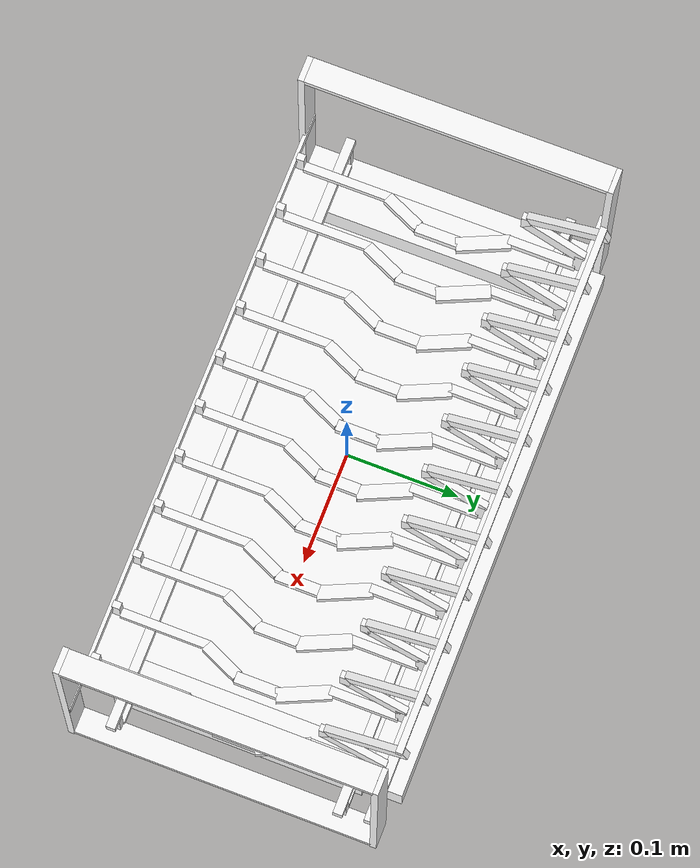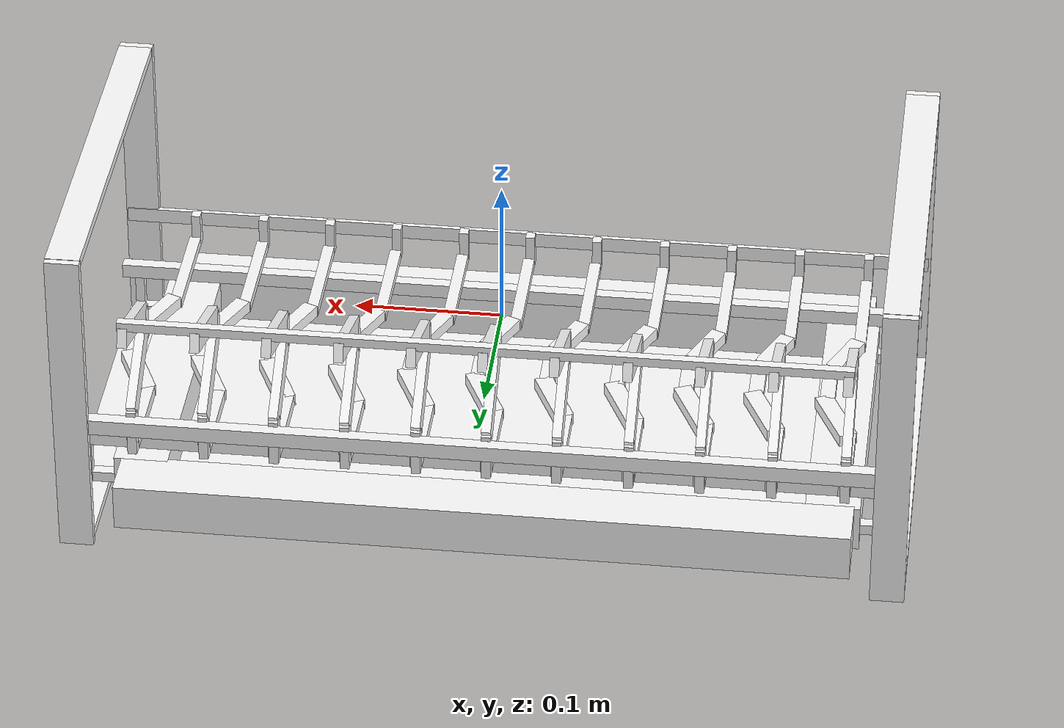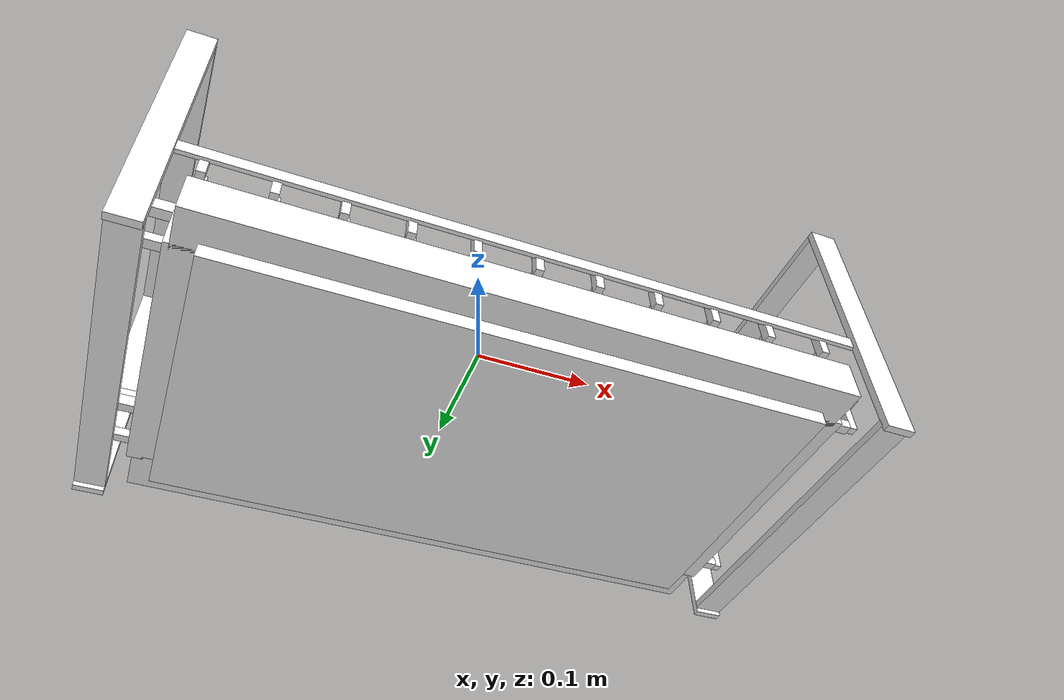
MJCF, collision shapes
<?xml version='1.0' encoding='utf-8'?>
<mujoco model="model">
  <option timestep="0.002" gravity="0.0 0.0 -9.81" />
  <compiler angle="radian" />
  <asset>
    <mesh file="visual/DishRack039.obj" name="DishRack039_vis" />
    <texture file="visual/T_BC001.png" name="DishRack039_material" type="2d" />
    <material name="DishRack039_material" rgba="1 1 1 1.0" texture="DishRack039_material" shininess="0.4472135901451111" specular="0.3103448502657381" />
  </asset>
  <default>
    <default class="visual">
      <geom conaffinity="0" contype="0" group="1" type="mesh" />
    </default>
    <default class="collision">
      <geom group="0" rgba="1 1 1 0.25" density="1.0" solref="0.004 1" solimp="0.998 0.998 0.001" />
    </default>
    <default class="spawn">
      <geom group="0" rgba="1 1 1 0.5" contype="0" conaffinity="0" />
      <site group="0" rgba="1 1 1 0.5" />
    </default>
    <default class="region">
      <geom group="1" conaffinity="0" contype="0" rgba="0 1 0 0" mass="0" />
    </default>
  </default>
  <worldbody>
    <body>
      <body name="object">
        <geom mesh="DishRack039_vis" type="mesh" solimp="0.998 0.998 0.001" solref="0.001 1" friction="0.95 0.3 0.1" class="visual" material="DishRack039_material" />
        <geom type="box" pos="-0.27304935 0.13317457 -0.00337540" size="0.011557742953300476 0.002996459836140275 0.11271847039461136" quat="1.0 0.0 0.0 0.0" class="collision" />
        <geom type="box" pos="-0.27304935 -0.14239266 -0.00337540" size="0.011557742953300476 0.002996459836140275 0.11271847039461136" quat="1.0 0.0 0.0 0.0" class="collision" />
        <geom type="box" pos="-0.27304935 -0.00428005 0.10661021" size="0.011557742953300476 0.002996459836140275 0.13569247722625732" quat="0.7071068286895752 0.7071067690849304 0.0 0.0" class="collision" />
        <geom type="box" pos="-0.27304935 -0.00428005 -0.10935645" size="0.011557742953300476 0.002996459836140275 0.13569247722625732" quat="0.7071068286895752 0.7071067690849304 0.0 0.0" class="collision" />
        <geom type="box" pos="0.27244776 -0.00428005 -0.10935645" size="0.011557742953300476 0.002996459836140275 0.13569247722625732" quat="0.7071068286895752 0.7071067690849304 0.0 0.0" class="collision" />
        <geom type="box" pos="0.23423474 -0.00128964 -0.08318489" size="0.004161766730248928 0.0029964621644467115 0.10559815168380737" quat="0.7071068286895752 0.7071067690849304 0.0 0.0" class="collision" />
        <geom type="box" pos="0.27244776 -0.14239266 -0.00337540" size="0.011557742953300476 0.002996459836140275 0.11271847039461136" quat="1.0 0.0 0.0 0.0" class="collision" />
        <geom type="box" pos="0.27244776 0.13317457 -0.00337540" size="0.011557742953300476 0.002996459836140275 0.11271847039461136" quat="1.0 0.0 0.0 0.0" class="collision" />
        <geom type="box" pos="0.00005560 -0.10445740 -0.05110114" size="0.004234712105244398 0.004974817857146263 0.28101786971092224" quat="0.5000000596046448 0.5 -0.4999999701976776 -0.5" class="collision" />
        <geom type="box" pos="0.00005560 0.09990076 -0.05110114" size="0.004234712105244398 0.004974817857146263 0.28101786971092224" quat="0.5000000596046448 0.5 -0.4999999701976776 -0.5" class="collision" />
        <geom type="box" pos="-0.00405438 0.13658084 0.06496321" size="0.0030479375272989273 0.00319293444044888 0.2413143664598465" quat="0.5000000596046448 0.5 -0.4999999701976776 -0.5" class="collision" />
        <geom type="box" pos="0.00005604 0.12861771 -0.02170758" size="0.004444757476449013 0.00549840135499835 0.283021479845047" quat="0.5000000596046448 0.5 -0.4999999701976776 -0.5" class="collision" />
        <geom type="box" pos="-0.24180835 -0.13580255 -0.03419140" size="0.0031420604791492224 0.011882595717906952 0.0036572199314832687" quat="5.338507946817117e-08 5.338507591545749e-08 -0.7071067690849304 -0.7071068286895752" class="collision" />
        <geom type="box" pos="-0.24100311 -0.09210290 -0.04289854" size="0.003947302233427763 0.003175448626279831 0.04009542241692543" quat="5.338507946817117e-08 5.338507591545749e-08 -0.7071067690849304 -0.7071068286895752" class="collision" />
        <geom type="box" pos="-0.24103889 0.08751867 -0.04198302" size="0.003983079455792904 0.004090973176062107 0.03108314797282219" quat="5.338507946817117e-08 5.338507591545749e-08 -0.7071067690849304 -0.7071068286895752" class="collision" />
        <geom type="box" pos="-0.24180835 0.12084966 -0.02962156" size="0.0031420602463185787 0.01645244099199772 0.004729328211396933" quat="5.338507946817117e-08 5.338507591545749e-08 -0.7071067690849304 -0.7071068286895752" class="collision" />
        <geom type="box" pos="-0.22328033 -0.00252992 -0.04198302" size="0.005019375588744879 0.004090974107384682 0.019256576895713806" quat="5.338507946817117e-08 5.338507591545749e-08 -0.7071067690849304 -0.7071068286895752" class="collision" />
        <geom type="box" pos="-0.24180835 0.09665310 0.00254635" size="0.0031420616433024406 0.030440540984272957 0.0073877060785889626" quat="5.3406690625479314e-08 8.168458975887916e-08 -0.30070582032203674 -0.9537169337272644" class="collision" />
        <geom type="box" pos="-0.24180835 0.07060832 0.02469176" size="0.0031420602463185787 0.010722363367676735 0.004367944784462452" quat="5.338507946817117e-08 5.338507591545749e-08 -0.7071067690849304 -0.7071068286895752" class="collision" />
        <geom type="box" pos="-0.24174181 0.10727131 0.04583704" size="0.00320861442014575 0.03675158694386482 0.006610536947846413" quat="8.697315223571422e-08 6.19317148675691e-08 -0.9861523509025574 -0.1658419519662857" class="collision" />
        <geom type="box" pos="-0.19343297 0.10727131 0.04583704" size="0.00320861442014575 0.03675158694386482 0.006610536947846413" quat="8.697315223571422e-08 6.19317148675691e-08 -0.9861523509025574 -0.1658419519662857" class="collision" />
        <geom type="box" pos="-0.19349952 0.07060832 0.02469176" size="0.0031420602463185787 0.010722363367676735 0.004367944784462452" quat="5.338507946817117e-08 5.338507591545749e-08 -0.7071067690849304 -0.7071068286895752" class="collision" />
        <geom type="box" pos="-0.19349952 0.09665310 0.00254635" size="0.0031420616433024406 0.030440540984272957 0.0073877060785889626" quat="5.3406690625479314e-08 8.168458975887916e-08 -0.30070582032203674 -0.9537169337272644" class="collision" />
        <geom type="box" pos="-0.17497149 -0.00252992 -0.04198302" size="0.005019375588744879 0.004090974107384682 0.019256576895713806" quat="5.338507946817117e-08 5.338507591545749e-08 -0.7071067690849304 -0.7071068286895752" class="collision" />
        <geom type="box" pos="-0.19349952 0.12084966 -0.02962156" size="0.0031420602463185787 0.01645244099199772 0.004729328211396933" quat="5.338507946817117e-08 5.338507591545749e-08 -0.7071067690849304 -0.7071068286895752" class="collision" />
        <geom type="box" pos="-0.19273005 0.08751867 -0.04198302" size="0.003983079455792904 0.004090973176062107 0.03108314797282219" quat="5.338507946817117e-08 5.338507591545749e-08 -0.7071067690849304 -0.7071068286895752" class="collision" />
        <geom type="box" pos="-0.19269428 -0.09210290 -0.04289854" size="0.003947302233427763 0.003175448626279831 0.04009542241692543" quat="5.338507946817117e-08 5.338507591545749e-08 -0.7071067690849304 -0.7071068286895752" class="collision" />
        <geom type="box" pos="-0.19349952 -0.13580255 -0.03419140" size="0.0031420604791492224 0.011882595717906952 0.0036572199314832687" quat="5.338507946817117e-08 5.338507591545749e-08 -0.7071067690849304 -0.7071068286895752" class="collision" />
        <geom type="box" pos="-0.14594421 -0.13580255 -0.03419140" size="0.0031420604791492224 0.011882595717906952 0.0036572199314832687" quat="5.338507946817117e-08 5.338507591545749e-08 -0.7071067690849304 -0.7071068286895752" class="collision" />
        <geom type="box" pos="-0.14513896 -0.09210290 -0.04289854" size="0.003947302233427763 0.003175448626279831 0.04009542241692543" quat="5.338507946817117e-08 5.338507591545749e-08 -0.7071067690849304 -0.7071068286895752" class="collision" />
        <geom type="box" pos="-0.14517474 0.08751867 -0.04198302" size="0.003983079455792904 0.004090973176062107 0.03108314797282219" quat="5.338507946817117e-08 5.338507591545749e-08 -0.7071067690849304 -0.7071068286895752" class="collision" />
        <geom type="box" pos="-0.14594421 0.12084966 -0.02962156" size="0.0031420602463185787 0.01645244099199772 0.004729328211396933" quat="5.338507946817117e-08 5.338507591545749e-08 -0.7071067690849304 -0.7071068286895752" class="collision" />
        <geom type="box" pos="-0.12741618 -0.00252992 -0.04198302" size="0.005019375588744879 0.004090974107384682 0.019256576895713806" quat="5.338507946817117e-08 5.338507591545749e-08 -0.7071067690849304 -0.7071068286895752" class="collision" />
        <geom type="box" pos="-0.14594421 0.09665310 0.00254635" size="0.0031420616433024406 0.030440540984272957 0.0073877060785889626" quat="5.3406690625479314e-08 8.168458975887916e-08 -0.30070582032203674 -0.9537169337272644" class="collision" />
        <geom type="box" pos="-0.14594421 0.07060832 0.02469176" size="0.0031420602463185787 0.010722363367676735 0.004367944784462452" quat="5.338507946817117e-08 5.338507591545749e-08 -0.7071067690849304 -0.7071068286895752" class="collision" />
        <geom type="box" pos="-0.14587766 0.10727131 0.04583704" size="0.00320861442014575 0.03675158694386482 0.006610536947846413" quat="8.697315223571422e-08 6.19317148675691e-08 -0.9861523509025574 -0.1658419519662857" class="collision" />
        <geom type="box" pos="-0.09876651 0.10727131 0.04583704" size="0.00320861442014575 0.03675158694386482 0.006610536947846413" quat="8.697315223571422e-08 6.19317148675691e-08 -0.9861523509025574 -0.1658419519662857" class="collision" />
        <geom type="box" pos="-0.09883306 0.07060832 0.02469176" size="0.0031420602463185787 0.010722363367676735 0.004367944784462452" quat="5.338507946817117e-08 5.338507591545749e-08 -0.7071067690849304 -0.7071068286895752" class="collision" />
        <geom type="box" pos="-0.09883306 0.09665310 0.00254635" size="0.0031420616433024406 0.030440540984272957 0.0073877060785889626" quat="5.3406690625479314e-08 8.168458975887916e-08 -0.30070582032203674 -0.9537169337272644" class="collision" />
        <geom type="box" pos="-0.08030503 -0.00252992 -0.04198302" size="0.005019375588744879 0.004090974107384682 0.019256576895713806" quat="5.338507946817117e-08 5.338507591545749e-08 -0.7071067690849304 -0.7071068286895752" class="collision" />
        <geom type="box" pos="-0.09883306 0.12084966 -0.02962156" size="0.0031420602463185787 0.01645244099199772 0.004729328211396933" quat="5.338507946817117e-08 5.338507591545749e-08 -0.7071067690849304 -0.7071068286895752" class="collision" />
        <geom type="box" pos="-0.09806359 0.08751867 -0.04198302" size="0.003983079455792904 0.004090973176062107 0.03108314797282219" quat="5.338507946817117e-08 5.338507591545749e-08 -0.7071067690849304 -0.7071068286895752" class="collision" />
        <geom type="box" pos="-0.09802782 -0.09210290 -0.04289854" size="0.003947302233427763 0.003175448626279831 0.04009542241692543" quat="5.338507946817117e-08 5.338507591545749e-08 -0.7071067690849304 -0.7071068286895752" class="collision" />
        <geom type="box" pos="-0.09883306 -0.13580255 -0.03419140" size="0.0031420604791492224 0.011882595717906952 0.0036572199314832687" quat="5.338507946817117e-08 5.338507591545749e-08 -0.7071067690849304 -0.7071068286895752" class="collision" />
        <geom type="box" pos="-0.05109436 -0.13580255 -0.03419140" size="0.0031420604791492224 0.011882595717906952 0.0036572199314832687" quat="5.338507946817117e-08 5.338507591545749e-08 -0.7071067690849304 -0.7071068286895752" class="collision" />
        <geom type="box" pos="-0.05028911 -0.09210290 -0.04289854" size="0.003947302233427763 0.003175448626279831 0.04009542241692543" quat="5.338507946817117e-08 5.338507591545749e-08 -0.7071067690849304 -0.7071068286895752" class="collision" />
        <geom type="box" pos="-0.05032489 0.08751867 -0.04198302" size="0.003983079455792904 0.004090973176062107 0.03108314797282219" quat="5.338507946817117e-08 5.338507591545749e-08 -0.7071067690849304 -0.7071068286895752" class="collision" />
        <geom type="box" pos="-0.05109436 0.12084966 -0.02962156" size="0.0031420602463185787 0.01645244099199772 0.004729328211396933" quat="5.338507946817117e-08 5.338507591545749e-08 -0.7071067690849304 -0.7071068286895752" class="collision" />
        <geom type="box" pos="-0.03256633 -0.00252992 -0.04198302" size="0.005019375588744879 0.004090974107384682 0.019256576895713806" quat="5.338507946817117e-08 5.338507591545749e-08 -0.7071067690849304 -0.7071068286895752" class="collision" />
        <geom type="box" pos="-0.05109436 0.09665310 0.00254635" size="0.0031420616433024406 0.030440540984272957 0.0073877060785889626" quat="5.3406690625479314e-08 8.168458975887916e-08 -0.30070582032203674 -0.9537169337272644" class="collision" />
        <geom type="box" pos="-0.05109436 0.07060832 0.02469176" size="0.0031420602463185787 0.010722363367676735 0.004367944784462452" quat="5.338507946817117e-08 5.338507591545749e-08 -0.7071067690849304 -0.7071068286895752" class="collision" />
        <geom type="box" pos="-0.05102781 0.10727131 0.04583704" size="0.00320861442014575 0.03675158694386482 0.006610536947846413" quat="8.697315223571422e-08 6.19317148675691e-08 -0.9861523509025574 -0.1658419519662857" class="collision" />
        <geom type="box" pos="-0.00416723 -0.13580255 -0.03419140" size="0.0031420604791492224 0.011882595717906952 0.0036572199314832687" quat="5.338507946817117e-08 5.338507591545749e-08 -0.7071067690849304 -0.7071068286895752" class="collision" />
        <geom type="box" pos="-0.00336198 -0.09210290 -0.04289854" size="0.003947302233427763 0.003175448626279831 0.04009542241692543" quat="5.338507946817117e-08 5.338507591545749e-08 -0.7071067690849304 -0.7071068286895752" class="collision" />
        <geom type="box" pos="-0.00339775 0.08751867 -0.04198302" size="0.003983079455792904 0.004090973176062107 0.03108314797282219" quat="5.338507946817117e-08 5.338507591545749e-08 -0.7071067690849304 -0.7071068286895752" class="collision" />
        <geom type="box" pos="-0.00416723 0.12084966 -0.02962156" size="0.0031420602463185787 0.01645244099199772 0.004729328211396933" quat="5.338507946817117e-08 5.338507591545749e-08 -0.7071067690849304 -0.7071068286895752" class="collision" />
        <geom type="box" pos="0.01436080 -0.00252992 -0.04198302" size="0.005019375588744879 0.004090974107384682 0.019256576895713806" quat="5.338507946817117e-08 5.338507591545749e-08 -0.7071067690849304 -0.7071068286895752" class="collision" />
        <geom type="box" pos="-0.00416722 0.09665310 0.00254635" size="0.0031420616433024406 0.030440540984272957 0.0073877060785889626" quat="5.3406690625479314e-08 8.168458975887916e-08 -0.30070582032203674 -0.9537169337272644" class="collision" />
        <geom type="box" pos="-0.00416723 0.07060832 0.02469176" size="0.0031420602463185787 0.010722363367676735 0.004367944784462452" quat="5.338507946817117e-08 5.338507591545749e-08 -0.7071067690849304 -0.7071068286895752" class="collision" />
        <geom type="box" pos="-0.00410067 0.10727131 0.04583704" size="0.00320861442014575 0.03675158694386482 0.006610536947846413" quat="8.697315223571422e-08 6.19317148675691e-08 -0.9861523509025574 -0.1658419519662857" class="collision" />
        <geom type="box" pos="0.04280650 -0.13580255 -0.03419140" size="0.0031420604791492224 0.011882595717906952 0.0036572199314832687" quat="5.338507946817117e-08 5.338507591545749e-08 -0.7071067690849304 -0.7071068286895752" class="collision" />
        <geom type="box" pos="0.04361175 -0.09210290 -0.04289854" size="0.003947302233427763 0.003175448626279831 0.04009542241692543" quat="5.338507946817117e-08 5.338507591545749e-08 -0.7071067690849304 -0.7071068286895752" class="collision" />
        <geom type="box" pos="0.04357597 0.08751867 -0.04198302" size="0.003983079455792904 0.004090973176062107 0.03108314797282219" quat="5.338507946817117e-08 5.338507591545749e-08 -0.7071067690849304 -0.7071068286895752" class="collision" />
        <geom type="box" pos="0.04280650 0.12084966 -0.02962156" size="0.0031420602463185787 0.01645244099199772 0.004729328211396933" quat="5.338507946817117e-08 5.338507591545749e-08 -0.7071067690849304 -0.7071068286895752" class="collision" />
        <geom type="box" pos="0.06133453 -0.00252992 -0.04198302" size="0.005019375588744879 0.004090974107384682 0.019256576895713806" quat="5.338507946817117e-08 5.338507591545749e-08 -0.7071067690849304 -0.7071068286895752" class="collision" />
        <geom type="box" pos="0.04280650 0.09665310 0.00254635" size="0.0031420616433024406 0.030440540984272957 0.0073877060785889626" quat="5.3406690625479314e-08 8.168458975887916e-08 -0.30070582032203674 -0.9537169337272644" class="collision" />
        <geom type="box" pos="0.04280650 0.07060832 0.02469176" size="0.0031420602463185787 0.010722363367676735 0.004367944784462452" quat="5.338507946817117e-08 5.338507591545749e-08 -0.7071067690849304 -0.7071068286895752" class="collision" />
        <geom type="box" pos="0.04287305 0.10727131 0.04583704" size="0.00320861442014575 0.03675158694386482 0.006610536947846413" quat="8.697315223571422e-08 6.19317148675691e-08 -0.9861523509025574 -0.1658419519662857" class="collision" />
        <geom type="box" pos="0.09036446 -0.13580255 -0.03419140" size="0.0031420604791492224 0.011882595717906952 0.0036572199314832687" quat="5.338507946817117e-08 5.338507591545749e-08 -0.7071067690849304 -0.7071068286895752" class="collision" />
        <geom type="box" pos="0.09116971 -0.09210290 -0.04289854" size="0.003947302233427763 0.003175448626279831 0.04009542241692543" quat="5.338507946817117e-08 5.338507591545749e-08 -0.7071067690849304 -0.7071068286895752" class="collision" />
        <geom type="box" pos="0.09113394 0.08751867 -0.04198302" size="0.003983079455792904 0.004090973176062107 0.03108314797282219" quat="5.338507946817117e-08 5.338507591545749e-08 -0.7071067690849304 -0.7071068286895752" class="collision" />
        <geom type="box" pos="0.09036446 0.12084966 -0.02962156" size="0.0031420602463185787 0.01645244099199772 0.004729328211396933" quat="5.338507946817117e-08 5.338507591545749e-08 -0.7071067690849304 -0.7071068286895752" class="collision" />
        <geom type="box" pos="0.10889249 -0.00252992 -0.04198302" size="0.005019375588744879 0.004090974107384682 0.019256576895713806" quat="5.338507946817117e-08 5.338507591545749e-08 -0.7071067690849304 -0.7071068286895752" class="collision" />
        <geom type="box" pos="0.09036446 0.09665310 0.00254635" size="0.0031420616433024406 0.030440540984272957 0.0073877060785889626" quat="5.3406690625479314e-08 8.168458975887916e-08 -0.30070582032203674 -0.9537169337272644" class="collision" />
        <geom type="box" pos="0.09036446 0.07060832 0.02469176" size="0.0031420602463185787 0.010722363367676735 0.004367944784462452" quat="5.338507946817117e-08 5.338507591545749e-08 -0.7071067690849304 -0.7071068286895752" class="collision" />
        <geom type="box" pos="0.09043101 0.10727131 0.04583704" size="0.00320861442014575 0.03675158694386482 0.006610536947846413" quat="8.697315223571422e-08 6.19317148675691e-08 -0.9861523509025574 -0.1658419519662857" class="collision" />
        <geom type="box" pos="0.13794881 -0.13580255 -0.03419140" size="0.0031420604791492224 0.011882595717906952 0.0036572199314832687" quat="5.338507946817117e-08 5.338507591545749e-08 -0.7071067690849304 -0.7071068286895752" class="collision" />
        <geom type="box" pos="0.13875405 -0.09210290 -0.04289854" size="0.003947302233427763 0.003175448626279831 0.04009542241692543" quat="5.338507946817117e-08 5.338507591545749e-08 -0.7071067690849304 -0.7071068286895752" class="collision" />
        <geom type="box" pos="0.13871828 0.08751867 -0.04198302" size="0.003983079455792904 0.004090973176062107 0.03108314797282219" quat="5.338507946817117e-08 5.338507591545749e-08 -0.7071067690849304 -0.7071068286895752" class="collision" />
        <geom type="box" pos="0.13794881 0.12084966 -0.02962156" size="0.0031420602463185787 0.01645244099199772 0.004729328211396933" quat="5.338507946817117e-08 5.338507591545749e-08 -0.7071067690849304 -0.7071068286895752" class="collision" />
        <geom type="box" pos="0.15647684 -0.00252992 -0.04198302" size="0.005019375588744879 0.004090974107384682 0.019256576895713806" quat="5.338507946817117e-08 5.338507591545749e-08 -0.7071067690849304 -0.7071068286895752" class="collision" />
        <geom type="box" pos="0.13794881 0.09665310 0.00254635" size="0.0031420616433024406 0.030440540984272957 0.0073877060785889626" quat="5.3406690625479314e-08 8.168458975887916e-08 -0.30070582032203674 -0.9537169337272644" class="collision" />
        <geom type="box" pos="0.13794881 0.07060832 0.02469176" size="0.0031420602463185787 0.010722363367676735 0.004367944784462452" quat="5.338507946817117e-08 5.338507591545749e-08 -0.7071067690849304 -0.7071068286895752" class="collision" />
        <geom type="box" pos="0.13801536 0.10727131 0.04583704" size="0.00320861442014575 0.03675158694386482 0.006610536947846413" quat="8.697315223571422e-08 6.19317148675691e-08 -0.9861523509025574 -0.1658419519662857" class="collision" />
        <geom type="box" pos="0.18528615 -0.13580255 -0.03419140" size="0.0031420604791492224 0.011882595717906952 0.0036572199314832687" quat="5.338507946817117e-08 5.338507591545749e-08 -0.7071067690849304 -0.7071068286895752" class="collision" />
        <geom type="box" pos="0.18609139 -0.09210290 -0.04289854" size="0.003947302233427763 0.003175448626279831 0.04009542241692543" quat="5.338507946817117e-08 5.338507591545749e-08 -0.7071067690849304 -0.7071068286895752" class="collision" />
        <geom type="box" pos="0.18605562 0.08751867 -0.04198302" size="0.003983079455792904 0.004090973176062107 0.03108314797282219" quat="5.338507946817117e-08 5.338507591545749e-08 -0.7071067690849304 -0.7071068286895752" class="collision" />
        <geom type="box" pos="0.18528615 0.12084966 -0.02962156" size="0.0031420602463185787 0.01645244099199772 0.004729328211396933" quat="5.338507946817117e-08 5.338507591545749e-08 -0.7071067690849304 -0.7071068286895752" class="collision" />
        <geom type="box" pos="0.20381418 -0.00252992 -0.04198302" size="0.005019375588744879 0.004090974107384682 0.019256576895713806" quat="5.338507946817117e-08 5.338507591545749e-08 -0.7071067690849304 -0.7071068286895752" class="collision" />
        <geom type="box" pos="0.18528615 0.09665310 0.00254635" size="0.0031420616433024406 0.030440540984272957 0.0073877060785889626" quat="5.3406690625479314e-08 8.168458975887916e-08 -0.30070582032203674 -0.9537169337272644" class="collision" />
        <geom type="box" pos="0.18528615 0.07060832 0.02469176" size="0.0031420602463185787 0.010722363367676735 0.004367944784462452" quat="5.338507946817117e-08 5.338507591545749e-08 -0.7071067690849304 -0.7071068286895752" class="collision" />
        <geom type="box" pos="0.18535270 0.10727131 0.04583704" size="0.00320861442014575 0.03675158694386482 0.006610536947846413" quat="8.697315223571422e-08 6.19317148675691e-08 -0.9861523509025574 -0.1658419519662857" class="collision" />
        <geom type="box" pos="0.23343751 -0.13580255 -0.03419140" size="0.0031420604791492224 0.011882595717906952 0.0036572199314832687" quat="5.338507946817117e-08 5.338507591545749e-08 -0.7071067690849304 -0.7071068286895752" class="collision" />
        <geom type="box" pos="0.23424275 -0.09210290 -0.04289854" size="0.003947302233427763 0.003175448626279831 0.04009542241692543" quat="5.338507946817117e-08 5.338507591545749e-08 -0.7071067690849304 -0.7071068286895752" class="collision" />
        <geom type="box" pos="0.23420697 0.08751867 -0.04198302" size="0.003983079455792904 0.004090973176062107 0.03108314797282219" quat="5.338507946817117e-08 5.338507591545749e-08 -0.7071067690849304 -0.7071068286895752" class="collision" />
        <geom type="box" pos="0.23343751 0.12084966 -0.02962156" size="0.0031420602463185787 0.01645244099199772 0.004729328211396933" quat="5.338507946817117e-08 5.338507591545749e-08 -0.7071067690849304 -0.7071068286895752" class="collision" />
        <geom type="box" pos="0.25196552 -0.00252992 -0.04198302" size="0.005019375588744879 0.004090974107384682 0.019256576895713806" quat="5.338507946817117e-08 5.338507591545749e-08 -0.7071067690849304 -0.7071068286895752" class="collision" />
        <geom type="box" pos="0.23343751 0.09665310 0.00254635" size="0.0031420616433024406 0.030440540984272957 0.0073877060785889626" quat="5.3406690625479314e-08 8.168458975887916e-08 -0.30070582032203674 -0.9537169337272644" class="collision" />
        <geom type="box" pos="0.23343751 0.07060832 0.02469176" size="0.0031420602463185787 0.010722363367676735 0.004367944784462452" quat="5.338507946817117e-08 5.338507591545749e-08 -0.7071067690849304 -0.7071068286895752" class="collision" />
        <geom type="box" pos="0.23350406 0.10727131 0.04583704" size="0.00320861442014575 0.03675158694386482 0.006610536947846413" quat="8.697315223571422e-08 6.19317148675691e-08 -0.9861523509025574 -0.1658419519662857" class="collision" />
        <geom type="box" pos="0.26907206 0.10080780 -0.07083873" size="0.003142060711979866 0.015064788982272148 0.0031605216208845377" quat="5.338507946817117e-08 5.338507591545749e-08 -0.7071067690849304 -0.7071068286895752" class="collision" />
        <geom type="box" pos="0.25175053 0.10007116 -0.08252011" size="0.003651356790214777 0.014366173185408115 0.003897160291671753" quat="0.5000000596046448 -0.5000000596046448 -0.4999999403953552 -0.4999999701976776" class="collision" />
        <geom type="box" pos="0.25175053 -0.10296121 -0.08252011" size="0.003651356790214777 0.014366173185408115 0.003897160291671753" quat="0.5000000596046448 -0.5000000596046448 -0.4999999403953552 -0.4999999701976776" class="collision" />
        <geom type="box" pos="0.26907206 -0.10361618 -0.07083873" size="0.003142060711979866 0.015064788982272148 0.0031605216208845377" quat="5.338507946817117e-08 5.338507591545749e-08 -0.7071067690849304 -0.7071068286895752" class="collision" />
        <geom type="box" pos="-0.27246422 -0.10361618 -0.07083873" size="0.003142060711979866 0.015064788982272148 0.0031605216208845377" quat="1.3767878215276141e-07 1.376787679419067e-07 0.7071067690849304 0.7071068286895752" class="collision" />
        <geom type="box" pos="-0.25514269 -0.10296121 -0.08252011" size="0.003651356790214777 0.014366173185408115 0.003897160291671753" quat="0.5000000596046448 -0.5000000596046448 0.4999999403953552 0.4999999701976776" class="collision" />
        <geom type="box" pos="-0.25514269 0.10007116 -0.08252011" size="0.003651356790214777 0.014366173185408115 0.003897160291671753" quat="0.5000000596046448 -0.5000000596046448 0.4999999403953552 0.4999999701976776" class="collision" />
        <geom type="box" pos="-0.27246422 0.10080780 -0.07083873" size="0.003142060711979866 0.015064788982272148 0.0031605216208845377" quat="1.3767878215276141e-07 1.376787679419067e-07 0.7071067690849304 0.7071068286895752" class="collision" />
        <geom type="box" pos="-0.23762690 -0.00128964 -0.08318489" size="0.004161766730248928 0.0029964621644467115 0.10559815168380737" quat="0.7071068286895752 0.7071067690849304 0.0 0.0" class="collision" />
        <geom type="box" pos="0.23136348 -0.00270270 -0.07787997" size="0.018313299864530563 0.016195064410567284 0.11262617260217667" quat="0.7071068286895752 0.7071067690849304 0.0 0.0" class="collision" />
        <geom type="box" pos="-0.00172525 0.12569100 -0.07787997" size="0.01831330731511116 0.016195068135857582 0.24619901180267334" quat="0.5000000596046448 0.5 0.4999999701976776 0.5" class="collision" />
        <geom type="box" pos="-0.23376009 -0.00270270 -0.07787997" size="0.018313299864530563 0.016195064410567284 0.11262617260217667" quat="0.7071068286895752 0.7071067690849304 0.0 0.0" class="collision" />
        <geom type="box" pos="-0.00172525 -0.12747000 -0.07787997" size="0.01831330731511116 0.016195068135857582 0.24619901180267334" quat="0.5000000596046448 -0.5 0.4999999701976776 -0.5" class="collision" />
        <geom type="box" pos="-0.00148981 -0.00084428 -0.09842417" size="0.22930043935775757 0.007339201867580414 0.12055755406618118" quat="5.338507946817117e-08 5.338507591545749e-08 -0.7071067690849304 -0.7071068286895752" class="collision" />
        <geom type="box" pos="0.27277079 -0.00428005 0.10661021" size="0.011557742953300476 0.002996459836140275 0.13569247722625732" quat="0.7071068286895752 0.7071067690849304 0.0 0.0" class="collision" />
        <geom type="box" pos="0.00005604 -0.14015056 -0.02807424" size="0.001678982749581337 0.005209550727158785 0.283021479845047" quat="0.5000000596046448 0.5 -0.4999999701976776 -0.5" class="collision" />
        <geom type="box" pos="0.24483451 0.03704786 -0.04198302" size="0.0061695631593465805 0.004090974107384682 0.02383071929216385" quat="0.14764025807380676 0.14764024317264557 -0.6915217638015747 -0.6915218234062195" class="collision" />
        <geom type="box" pos="0.24322380 -0.03750479 -0.04198302" size="0.005195050034672022 0.004090974107384682 0.018491651862859726" quat="0.14764033257961273 -0.14764033257961273 -0.6915217638015747 0.6915217638015747" class="collision" />
        <geom type="box" pos="0.19483338 -0.03750479 -0.04198302" size="0.005195050034672022 0.004090974107384682 0.018491651862859726" quat="0.14764033257961273 -0.14764033257961273 -0.6915217638015747 0.6915217638015747" class="collision" />
        <geom type="box" pos="0.19667451 0.03704786 -0.04198302" size="0.0061695631593465805 0.004090974107384682 0.02383071929216385" quat="0.14764025807380676 0.14764024317264557 -0.6915217638015747 -0.6915218234062195" class="collision" />
        <geom type="box" pos="0.14919473 0.03704786 -0.04198302" size="0.0061695631593465805 0.004090974107384682 0.02383071929216385" quat="0.14764025807380676 0.14764024317264557 -0.6915217638015747 -0.6915218234062195" class="collision" />
        <geom type="box" pos="0.14735360 -0.03750479 -0.04198302" size="0.005195050034672022 0.004090974107384682 0.018491651862859726" quat="0.14764033257961273 -0.14764033257961273 -0.6915217638015747 0.6915217638015747" class="collision" />
        <geom type="box" pos="0.09999386 -0.03750479 -0.04198302" size="0.005195050034672022 0.004090974107384682 0.018491651862859726" quat="0.14764033257961273 -0.14764033257961273 -0.6915217638015747 0.6915217638015747" class="collision" />
        <geom type="box" pos="0.10183500 0.03704786 -0.04198302" size="0.0061695631593465805 0.004090974107384682 0.02383071929216385" quat="0.14764025807380676 0.14764024317264557 -0.6915217638015747 -0.6915218234062195" class="collision" />
        <geom type="box" pos="-0.08718532 0.03704786 -0.04198302" size="0.0061695631593465805 0.004090974107384682 0.02383071929216385" quat="0.14764025807380676 0.14764024317264557 -0.6915217638015747 -0.6915218234062195" class="collision" />
        <geom type="box" pos="-0.08902645 -0.03750479 -0.04198302" size="0.005195050034672022 0.004090974107384682 0.018491651862859726" quat="0.14764033257961273 -0.14764033257961273 -0.6915217638015747 0.6915217638015747" class="collision" />
        <geom type="box" pos="-0.04166672 -0.03750479 -0.04198302" size="0.005195050034672022 0.004090974107384682 0.018491651862859726" quat="0.14764033257961273 -0.14764033257961273 -0.6915217638015747 0.6915217638015747" class="collision" />
        <geom type="box" pos="-0.03982558 0.03704786 -0.04198302" size="0.0061695631593465805 0.004090974107384682 0.02383071929216385" quat="0.14764025807380676 0.14764024317264557 -0.6915217638015747 -0.6915218234062195" class="collision" />
        <geom type="box" pos="0.00765420 0.03704786 -0.04198302" size="0.0061695631593465805 0.004090974107384682 0.02383071929216385" quat="0.14764025807380676 0.14764024317264557 -0.6915217638015747 -0.6915218234062195" class="collision" />
        <geom type="box" pos="0.00581306 -0.03750479 -0.04198302" size="0.005195050034672022 0.004090974107384682 0.018491651862859726" quat="0.14764033257961273 -0.14764033257961273 -0.6915217638015747 0.6915217638015747" class="collision" />
        <geom type="box" pos="0.05259757 -0.03750479 -0.04198302" size="0.005195050034672022 0.004090974107384682 0.018491651862859726" quat="0.14764033257961273 -0.14764033257961273 -0.6915217638015747 0.6915217638015747" class="collision" />
        <geom type="box" pos="0.05420829 0.03704786 -0.04198302" size="0.0061695631593465805 0.004090974107384682 0.02383071929216385" quat="0.14764025807380676 0.14764024317264557 -0.6915217638015747 -0.6915218234062195" class="collision" />
        <geom type="box" pos="-0.13634323 -0.03750479 -0.04198302" size="0.005195050034672022 0.004090974107384682 0.018491651862859726" quat="0.14764033257961273 -0.14764033257961273 -0.6915217638015747 0.6915217638015747" class="collision" />
        <geom type="box" pos="-0.13450210 0.03704786 -0.04198302" size="0.0061695631593465805 0.004090974107384682 0.02383071929216385" quat="0.14764025807380676 0.14764024317264557 -0.6915217638015747 -0.6915218234062195" class="collision" />
        <geom type="box" pos="-0.18198188 0.03704786 -0.04198302" size="0.0061695631593465805 0.004090974107384682 0.02383071929216385" quat="0.14764025807380676 0.14764024317264557 -0.6915217638015747 -0.6915218234062195" class="collision" />
        <geom type="box" pos="-0.18382300 -0.03750479 -0.04198302" size="0.005195050034672022 0.004090974107384682 0.018491651862859726" quat="0.14764033257961273 -0.14764033257961273 -0.6915217638015747 0.6915217638015747" class="collision" />
        <geom type="box" pos="-0.23213910 -0.03750479 -0.04198302" size="0.005195050034672022 0.004090974107384682 0.018491651862859726" quat="0.14764033257961273 -0.14764033257961273 -0.6915217638015747 0.6915217638015747" class="collision" />
        <geom type="box" pos="-0.23029797 0.03704786 -0.04198302" size="0.0061695631593465805 0.004090974107384682 0.02383071929216385" quat="0.14764025807380676 0.14764024317264557 -0.6915217638015747 -0.6915218234062195" class="collision" />
        <geom class="region" name="reg_int_0" type="box" pos="-0.0002633650000000154 -0.033608120000000005 0.094549315" size="0.261734705 0.09872968 0.134905925" />
        <geom size="0.2865773 0.14738261 0.11463092" pos="0.0 -0.0 -0.0" name="reg_bbox" class="region" type="box" quat="1.0 0.0 0.0 0.0" />
        </body>
    </body>
  </worldbody>
  <actuator />
</mujoco>
